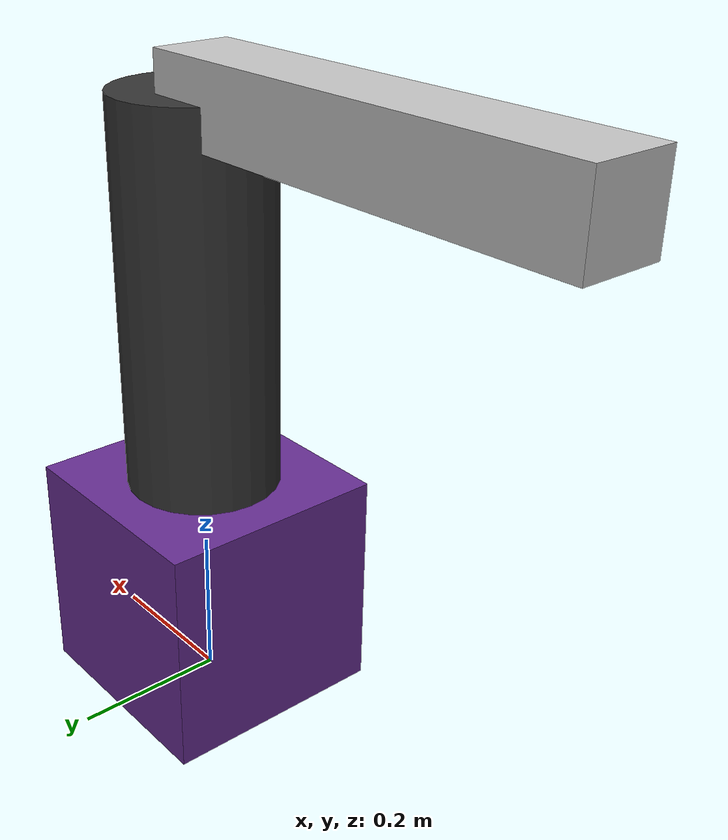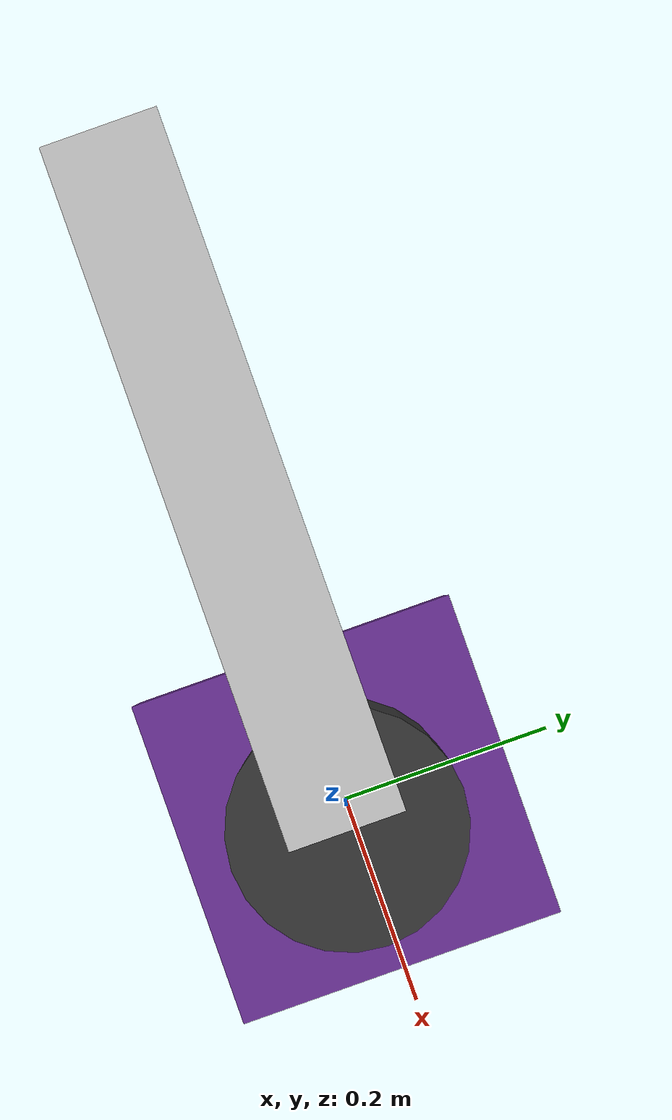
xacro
<?xml version="1.0" encoding="UTF-8"?>
<robot xmlns:xacro="http://wiki.ros.org/xacro" name="rrbot">

  <!-- Use this if parameters are set from the launch file, otherwise delete -->
  <xacro:arg name="prefix" default="" />

  <xacro:arg name="use_mock_hardware" default="false" />
  <xacro:arg name="mock_sensor_commands" default="false" />
  <xacro:arg name="sim_gazebo_classic" default="false" />
  <xacro:arg name="sim_gazebo" default="false" />
  <xacro:arg name="simulation_controllers" default="" />

  <xacro:include filename="$(find controlko_description)/urdf/rrbot/rrbot_macro.xacro"/>
  <xacro:include filename="$(find controlko_description)/urdf/rrbot/rrbot_macro.ros2_control.xacro"/>

  <!-- create link fixed to the "world" -->
  <link name="world" />

  <!-- Load robot's macro with parameters -->
  <!-- set prefix if multiple robots are used -->
  <xacro:rrbot prefix="$(arg prefix)" parent="world" >
    <origin xyz="0 0 0" rpy="0 0 0" />          <!-- position robot in the world -->
  </xacro:rrbot>

  <xacro:rrbot_ros2_control
    name="rrbot"
    prefix="$(arg prefix)"
    use_mock_hardware="$(arg use_mock_hardware)"
    mock_sensor_commands="$(arg mock_sensor_commands)"
    sim_gazebo_classic="$(arg sim_gazebo_classic)"
    sim_gazebo="$(arg sim_gazebo)"/>

  <xacro:if value="$(arg sim_gazebo_classic)">
    <!-- Gazebo plugins -->
    <gazebo reference="world">
    </gazebo>
    <gazebo>
      <plugin filename="libgazebo_ros2_control.so" name="gazebo_ros2_control">
        <parameters>$(arg simulation_controllers)</parameters>
      </plugin>
    </gazebo>
  </xacro:if>

  <xacro:if value="$(arg sim_gazebo)">
    <!-- Gazebo plugins -->
    <gazebo reference="world">
    </gazebo>
    <gazebo>
      <plugin filename="libign_ros2_control-system.so" name="ign_ros2_control::IgnitionROS2ControlPlugin">
        <parameters>$(arg simulation_controllers)</parameters>
        <controller_manager_node_name>$(arg prefix)controller_manager</controller_manager_node_name>
      </plugin>
    </gazebo>
  </xacro:if>

</robot>

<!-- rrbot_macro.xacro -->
<robot xmlns:xacro="http://wiki.ros.org/xacro">

  <xacro:include filename="$(find controlko_description)/urdf/common.xacro" />

  <xacro:macro name="rrbot" params="prefix parent *origin">
    <!-- LINKS -->
    <!-- base link -->
    <link name="${prefix}base_link">
      <!-- Default inertial for Gazebo - copy and edit block from 'common.xacro'
           to get more realistic behaviour-->
      <xacro:default_inertial/>
      <visual>
        <origin xyz="0 0 0.15" rpy="0 0 0" />
        <geometry>
          <box size="0.3 0.3 0.3"/>
        </geometry>
        <material name="StoglRobotics/Violet"/>
      </visual>
      <collision>
        <origin xyz="0 0 0.15" rpy="0 0 0" />
        <geometry>
          <box size="0.3 0.3 0.3"/>
        </geometry>
      </collision>
    </link>
    <!-- link 1 -->
    <link name="${prefix}link1">
      <!-- Default inertial for Gazebo - copy and edit block from 'common.xacro'
           to get more realistic behaviour-->
      <xacro:default_inertial/>
      <visual>
        <origin xyz="0 0 0.25" rpy="0 0 0" />
        <geometry>
          <cylinder length="0.5" radius="${0.2/2}" />
        </geometry>
        <material name="StoglRobotics/DarkGrey"/>
      </visual>
      <collision>
        <origin xyz="0 0 0.25" rpy="0 0 0" />
        <geometry>
          <cylinder length="0.5" radius="${0.2/2}" />
        </geometry>
      </collision>
    </link>
    <!-- link 2 -->
    <link name="${prefix}link2">
      <!-- Default inertial for Gazebo - copy and edit block from 'common.xacro'
           to get more realistic behaviour-->
      <xacro:default_inertial/>
      <visual>
        <origin xyz="0 0 0.3" rpy="0 0 0" />
        <geometry>
          <box size="0.1 0.1 0.6"/>
        </geometry>
        <material name="StoglRobotics/LightGrey"/>
      </visual>
      <collision>
        <origin xyz="0 0 0.3" rpy="0 0 0" />
        <geometry>
          <box size="0.1 0.1 0.6"/>
        </geometry>
      </collision>
    </link>

    <!-- All-zero tool frame. This frame should correspond to the TOOL frame of the robot's controller.) -->
    <link name="${prefix}tool0" />
    <!-- tool link -->

<!-- START Delete if not needed -->
    <!-- This frame should correspond to the BASE coordinate system of robot's controller.) -->
    <link name="${prefix}base" />
    <!-- Frame for mounting EEF models to a manipulator. x+ axis points forward (REP 103). -->
    <link name="${prefix}flange" />
<!-- END Delete if not needed  -->
    <!-- END LINKS -->

    <!-- JOINTS -->
    <!-- base_joint fixes base_link to the environment -->
    <joint name="${prefix}base_joint" type="fixed">
      <xacro:insert_block name="origin" />
      <parent link="${parent}" />
      <child link="${prefix}base_link" />
    </joint>
    <!-- joint 1 -->
    <joint name="${prefix}joint1" type="revolute">
      <origin xyz="0 0 0.3" rpy="0 0 0" />
      <parent link="${prefix}base_link" />
      <child link="${prefix}link1" />
      <axis xyz="0 0 1" />
      <limit effort="0" lower="${radians(-380)}" upper="${radians(380)}" velocity="${radians(180)}" />
    </joint>
    <!-- joint 2 -->
    <joint name="${prefix}joint2" type="revolute">
      <origin xyz="0 0 0.5" rpy="0 -${pi/2} 0" />
      <parent link="${prefix}link1" />
      <child link="${prefix}link2" />
      <axis xyz="0 1 0" />
      <limit effort="0" lower="${radians(-60)}" upper="${radians(240)}" velocity="${radians(180)}" />
    </joint>

    <!-- tool frame - fixed frame -->
    <joint name="${prefix}link2-tool0" type="fixed">
      <parent link="${prefix}link2" />
      <child link="${prefix}tool0" />
      <origin xyz="0 0 0.6" rpy="0 ${-pi} ${-pi/2}" />
    </joint>
    <!-- END JOINTS -->

<!-- START Delete if not needed -->
    <joint name="${prefix}base_link-base_joint" type="fixed">
      <origin xyz="0 0 0" rpy="0 0 0" />
      <parent link="${prefix}base_link" />
      <child link="${prefix}base" />
    </joint>

    <joint name="${prefix}tool0-flange_joint" type="fixed">
      <origin xyz="0 0 0" rpy="0 0 0" />
      <parent link="${prefix}tool0" />
      <child link="${prefix}flange" />
    </joint>
<!-- END Delete if not needed  -->

  </xacro:macro>
</robot>

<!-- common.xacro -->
<robot xmlns:xacro="http://www.ros.org/wiki/xacro">

  <xacro:macro name="default_inertial">
    <inertial>
      <origin
        xyz="0 0 0"
        rpy="0 0 0" />
      <mass
        value="0.01" />
      <inertia
        ixx="0.001"
        ixy="0.0"
        ixz="0.0"
        iyy="0.001"
        iyz="0.0"
        izz="0.001" />
    </inertial>
  </xacro:macro>

  <material name="StoglRobotics/Violet">
    <color rgba="${102/255} ${46/255} ${145/255} 1.0"/>
    <ambient>1 0 0 1</ambient>
    <diffuse>1 0 0 1</diffuse>
    <specular>0.1 0.1 0.1 1</specular>
    <emissive>0 0 0 0</emissive>
  </material>

  <material name="StoglRobotics/DarkGrey">
    <color rgba="${51/255} ${51/255} ${51/255} 1.0"/>
    <ambient>1 0 0 1</ambient>
    <diffuse>1 0 0 1</diffuse>
    <specular>0.1 0.1 0.1 1</specular>
    <emissive>0 0 0 0</emissive>
  </material>

  <material name="StoglRobotics/LightGrey">
    <color rgba="${194/255} ${194/255} ${194/255} 1.0"/>
    <ambient>1 0 0 1</ambient>
    <diffuse>1 0 0 1</diffuse>
    <specular>0.1 0.1 0.1 1</specular>
    <emissive>0 0 0 0</emissive>
  </material>

</robot>
